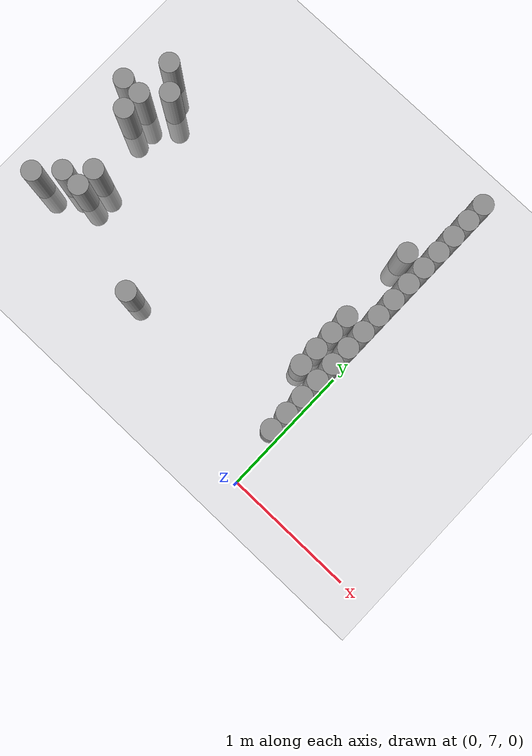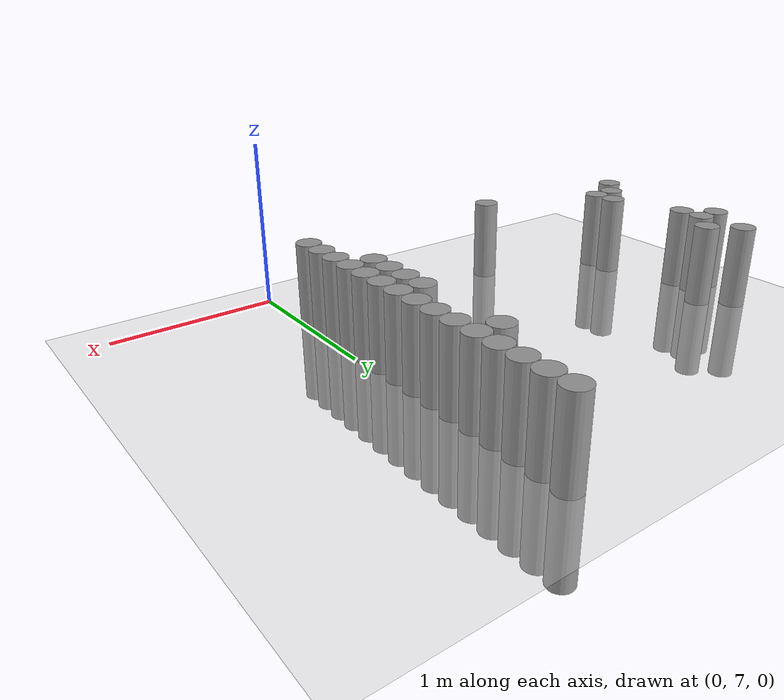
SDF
<sdf version="1.6">
 <world name="default">
  <model name="ground_plane">
   <static>1</static>
   <static>1</static>
   <link name="link">
    <collision name="collision">
     <geometry><plane><normal>0 0 1</normal><size>100 100</size></plane></geometry>
     <surface><friction><ode><mu>100</mu><mu2>50</mu2></ode></friction></surface>
    </collision>
    <visual name="visual">
     <cast_shadows>0</cast_shadows>
     <geometry><plane><normal>0 0 1</normal><size>100 100</size></plane></geometry>
     <material>
      <script><uri>file://media/materials/scripts/gazebo.material</uri><name>Gazebo/Grey</name></script>
     </material>
    </visual>
   </link>
  </model>
  <model name="unit_cylinder_167">
   <static>1</static>
   <pose>-2.475000 7.575000 0.000000 0.000000 0.000000 0.000000</pose>
   <link name="link">
    <inertial>
     <mass>1</mass>
     <inertia><ixx>0.145833</ixx><ixy>0</ixy><ixz>0</ixz><iyy>0.145833</iyy><iyz>0</iyz><izz>0.125</izz></inertia>
    </inertial>
    <collision name="collision">
     <geometry><cylinder><radius>0.075000</radius><length>1</length></cylinder></geometry>
    </collision>
    <visual name="visual">
     <geometry><cylinder><radius>0.075000</radius><length>1</length></cylinder></geometry>
     <material>
      <script><name>Gazebo/Grey</name><uri>file://media/materials/scripts/gazebo.material</uri></script>
     </material>
    </visual>
   </link>
  </model>
  <model name="unit_cylinder_168">
   <static>1</static>
   <pose>-2.475000 8.475000 0.000000 0.000000 0.000000 0.000000</pose>
   <link name="link">
    <inertial>
     <mass>1</mass>
     <inertia><ixx>0.145833</ixx><ixy>0</ixy><ixz>0</ixz><iyy>0.145833</iyy><iyz>0</iyz><izz>0.125</izz></inertia>
    </inertial>
    <collision name="collision">
     <geometry><cylinder><radius>0.075000</radius><length>1</length></cylinder></geometry>
    </collision>
    <visual name="visual">
     <geometry><cylinder><radius>0.075000</radius><length>1</length></cylinder></geometry>
     <material>
      <script><name>Gazebo/Grey</name><uri>file://media/materials/scripts/gazebo.material</uri></script>
     </material>
    </visual>
   </link>
  </model>
  <model name="unit_cylinder_171">
   <static>1</static>
   <pose>-2.325000 7.725000 0.000000 0.000000 0.000000 0.000000</pose>
   <link name="link">
    <inertial>
     <mass>1</mass>
     <inertia><ixx>0.145833</ixx><ixy>0</ixy><ixz>0</ixz><iyy>0.145833</iyy><iyz>0</iyz><izz>0.125</izz></inertia>
    </inertial>
    <collision name="collision">
     <geometry><cylinder><radius>0.075000</radius><length>1</length></cylinder></geometry>
    </collision>
    <visual name="visual">
     <geometry><cylinder><radius>0.075000</radius><length>1</length></cylinder></geometry>
     <material>
      <script><name>Gazebo/Grey</name><uri>file://media/materials/scripts/gazebo.material</uri></script>
     </material>
    </visual>
   </link>
  </model>
  <model name="unit_cylinder_172">
   <static>1</static>
   <pose>-2.325000 8.325000 0.000000 0.000000 0.000000 0.000000</pose>
   <link name="link">
    <inertial>
     <mass>1</mass>
     <inertia><ixx>0.145833</ixx><ixy>0</ixy><ixz>0</ixz><iyy>0.145833</iyy><iyz>0</iyz><izz>0.125</izz></inertia>
    </inertial>
    <collision name="collision">
     <geometry><cylinder><radius>0.075000</radius><length>1</length></cylinder></geometry>
    </collision>
    <visual name="visual">
     <geometry><cylinder><radius>0.075000</radius><length>1</length></cylinder></geometry>
     <material>
      <script><name>Gazebo/Grey</name><uri>file://media/materials/scripts/gazebo.material</uri></script>
     </material>
    </visual>
   </link>
  </model>
  <model name="unit_cylinder_173">
   <static>1</static>
   <pose>-2.325000 8.475000 0.000000 0.000000 0.000000 0.000000</pose>
   <link name="link">
    <inertial>
     <mass>1</mass>
     <inertia><ixx>0.145833</ixx><ixy>0</ixy><ixz>0</ixz><iyy>0.145833</iyy><iyz>0</iyz><izz>0.125</izz></inertia>
    </inertial>
    <collision name="collision">
     <geometry><cylinder><radius>0.075000</radius><length>1</length></cylinder></geometry>
    </collision>
    <visual name="visual">
     <geometry><cylinder><radius>0.075000</radius><length>1</length></cylinder></geometry>
     <material>
      <script><name>Gazebo/Grey</name><uri>file://media/materials/scripts/gazebo.material</uri></script>
     </material>
    </visual>
   </link>
  </model>
  <model name="unit_cylinder_174">
   <static>1</static>
   <pose>-2.325000 8.775000 0.000000 0.000000 0.000000 0.000000</pose>
   <link name="link">
    <inertial>
     <mass>1</mass>
     <inertia><ixx>0.145833</ixx><ixy>0</ixy><ixz>0</ixz><iyy>0.145833</iyy><iyz>0</iyz><izz>0.125</izz></inertia>
    </inertial>
    <collision name="collision">
     <geometry><cylinder><radius>0.075000</radius><length>1</length></cylinder></geometry>
    </collision>
    <visual name="visual">
     <geometry><cylinder><radius>0.075000</radius><length>1</length></cylinder></geometry>
     <material>
      <script><name>Gazebo/Grey</name><uri>file://media/materials/scripts/gazebo.material</uri></script>
     </material>
    </visual>
   </link>
  </model>
  <model name="unit_cylinder_177">
   <static>1</static>
   <pose>-2.175000 7.725000 0.000000 0.000000 0.000000 0.000000</pose>
   <link name="link">
    <inertial>
     <mass>1</mass>
     <inertia><ixx>0.145833</ixx><ixy>0</ixy><ixz>0</ixz><iyy>0.145833</iyy><iyz>0</iyz><izz>0.125</izz></inertia>
    </inertial>
    <collision name="collision">
     <geometry><cylinder><radius>0.075000</radius><length>1</length></cylinder></geometry>
    </collision>
    <visual name="visual">
     <geometry><cylinder><radius>0.075000</radius><length>1</length></cylinder></geometry>
     <material>
      <script><name>Gazebo/Grey</name><uri>file://media/materials/scripts/gazebo.material</uri></script>
     </material>
    </visual>
   </link>
  </model>
  <model name="unit_cylinder_178">
   <static>1</static>
   <pose>-2.175000 7.875000 0.000000 0.000000 0.000000 0.000000</pose>
   <link name="link">
    <inertial>
     <mass>1</mass>
     <inertia><ixx>0.145833</ixx><ixy>0</ixy><ixz>0</ixz><iyy>0.145833</iyy><iyz>0</iyz><izz>0.125</izz></inertia>
    </inertial>
    <collision name="collision">
     <geometry><cylinder><radius>0.075000</radius><length>1</length></cylinder></geometry>
    </collision>
    <visual name="visual">
     <geometry><cylinder><radius>0.075000</radius><length>1</length></cylinder></geometry>
     <material>
      <script><name>Gazebo/Grey</name><uri>file://media/materials/scripts/gazebo.material</uri></script>
     </material>
    </visual>
   </link>
  </model>
  <model name="unit_cylinder_179">
   <static>1</static>
   <pose>-2.175000 8.625000 0.000000 0.000000 0.000000 0.000000</pose>
   <link name="link">
    <inertial>
     <mass>1</mass>
     <inertia><ixx>0.145833</ixx><ixy>0</ixy><ixz>0</ixz><iyy>0.145833</iyy><iyz>0</iyz><izz>0.125</izz></inertia>
    </inertial>
    <collision name="collision">
     <geometry><cylinder><radius>0.075000</radius><length>1</length></cylinder></geometry>
    </collision>
    <visual name="visual">
     <geometry><cylinder><radius>0.075000</radius><length>1</length></cylinder></geometry>
     <material>
      <script><name>Gazebo/Grey</name><uri>file://media/materials/scripts/gazebo.material</uri></script>
     </material>
    </visual>
   </link>
  </model>
  <model name="unit_cylinder_189">
   <static>1</static>
   <pose>-1.425000 7.425000 0.000000 0.000000 0.000000 0.000000</pose>
   <link name="link">
    <inertial>
     <mass>1</mass>
     <inertia><ixx>0.145833</ixx><ixy>0</ixy><ixz>0</ixz><iyy>0.145833</iyy><iyz>0</iyz><izz>0.125</izz></inertia>
    </inertial>
    <collision name="collision">
     <geometry><cylinder><radius>0.075000</radius><length>1</length></cylinder></geometry>
    </collision>
    <visual name="visual">
     <geometry><cylinder><radius>0.075000</radius><length>1</length></cylinder></geometry>
     <material>
      <script><name>Gazebo/Grey</name><uri>file://media/materials/scripts/gazebo.material</uri></script>
     </material>
    </visual>
   </link>
  </model>
  <model name="unit_cylinder_200">
   <static>1</static>
   <pose>-0.225000 7.875000 0.000000 0.000000 0.000000 0.000000</pose>
   <link name="link">
    <inertial>
     <mass>1</mass>
     <inertia><ixx>0.145833</ixx><ixy>0</ixy><ixz>0</ixz><iyy>0.145833</iyy><iyz>0</iyz><izz>0.125</izz></inertia>
    </inertial>
    <collision name="collision">
     <geometry><cylinder><radius>0.075000</radius><length>1</length></cylinder></geometry>
    </collision>
    <visual name="visual">
     <geometry><cylinder><radius>0.075000</radius><length>1</length></cylinder></geometry>
     <material>
      <script><name>Gazebo/Grey</name><uri>file://media/materials/scripts/gazebo.material</uri></script>
     </material>
    </visual>
   </link>
  </model>
  <model name="unit_cylinder_201">
   <static>1</static>
   <pose>-0.225000 8.025000 0.000000 0.000000 0.000000 0.000000</pose>
   <link name="link">
    <inertial>
     <mass>1</mass>
     <inertia><ixx>0.145833</ixx><ixy>0</ixy><ixz>0</ixz><iyy>0.145833</iyy><iyz>0</iyz><izz>0.125</izz></inertia>
    </inertial>
    <collision name="collision">
     <geometry><cylinder><radius>0.075000</radius><length>1</length></cylinder></geometry>
    </collision>
    <visual name="visual">
     <geometry><cylinder><radius>0.075000</radius><length>1</length></cylinder></geometry>
     <material>
      <script><name>Gazebo/Grey</name><uri>file://media/materials/scripts/gazebo.material</uri></script>
     </material>
    </visual>
   </link>
  </model>
  <model name="unit_cylinder_202">
   <static>1</static>
   <pose>-0.225000 8.175000 0.000000 0.000000 0.000000 0.000000</pose>
   <link name="link">
    <inertial>
     <mass>1</mass>
     <inertia><ixx>0.145833</ixx><ixy>0</ixy><ixz>0</ixz><iyy>0.145833</iyy><iyz>0</iyz><izz>0.125</izz></inertia>
    </inertial>
    <collision name="collision">
     <geometry><cylinder><radius>0.075000</radius><length>1</length></cylinder></geometry>
    </collision>
    <visual name="visual">
     <geometry><cylinder><radius>0.075000</radius><length>1</length></cylinder></geometry>
     <material>
      <script><name>Gazebo/Grey</name><uri>file://media/materials/scripts/gazebo.material</uri></script>
     </material>
    </visual>
   </link>
  </model>
  <model name="unit_cylinder_203">
   <static>1</static>
   <pose>-0.225000 8.325000 0.000000 0.000000 0.000000 0.000000</pose>
   <link name="link">
    <inertial>
     <mass>1</mass>
     <inertia><ixx>0.145833</ixx><ixy>0</ixy><ixz>0</ixz><iyy>0.145833</iyy><iyz>0</iyz><izz>0.125</izz></inertia>
    </inertial>
    <collision name="collision">
     <geometry><cylinder><radius>0.075000</radius><length>1</length></cylinder></geometry>
    </collision>
    <visual name="visual">
     <geometry><cylinder><radius>0.075000</radius><length>1</length></cylinder></geometry>
     <material>
      <script><name>Gazebo/Grey</name><uri>file://media/materials/scripts/gazebo.material</uri></script>
     </material>
    </visual>
   </link>
  </model>
  <model name="unit_cylinder_204">
   <static>1</static>
   <pose>-0.225000 8.925000 0.000000 0.000000 0.000000 0.000000</pose>
   <link name="link">
    <inertial>
     <mass>1</mass>
     <inertia><ixx>0.145833</ixx><ixy>0</ixy><ixz>0</ixz><iyy>0.145833</iyy><iyz>0</iyz><izz>0.125</izz></inertia>
    </inertial>
    <collision name="collision">
     <geometry><cylinder><radius>0.075000</radius><length>1</length></cylinder></geometry>
    </collision>
    <visual name="visual">
     <geometry><cylinder><radius>0.075000</radius><length>1</length></cylinder></geometry>
     <material>
      <script><name>Gazebo/Grey</name><uri>file://media/materials/scripts/gazebo.material</uri></script>
     </material>
    </visual>
   </link>
  </model>
  <model name="unit_cylinder_220">
   <static>1</static>
   <pose>-0.075000 7.425000 0.000000 0.000000 0.000000 0.000000</pose>
   <link name="link">
    <inertial>
     <mass>1</mass>
     <inertia><ixx>0.145833</ixx><ixy>0</ixy><ixz>0</ixz><iyy>0.145833</iyy><iyz>0</iyz><izz>0.125</izz></inertia>
    </inertial>
    <collision name="collision">
     <geometry><cylinder><radius>0.075000</radius><length>1</length></cylinder></geometry>
    </collision>
    <visual name="visual">
     <geometry><cylinder><radius>0.075000</radius><length>1</length></cylinder></geometry>
     <material>
      <script><name>Gazebo/Grey</name><uri>file://media/materials/scripts/gazebo.material</uri></script>
     </material>
    </visual>
   </link>
  </model>
  <model name="unit_cylinder_221">
   <static>1</static>
   <pose>-0.075000 7.575000 0.000000 0.000000 0.000000 0.000000</pose>
   <link name="link">
    <inertial>
     <mass>1</mass>
     <inertia><ixx>0.145833</ixx><ixy>0</ixy><ixz>0</ixz><iyy>0.145833</iyy><iyz>0</iyz><izz>0.125</izz></inertia>
    </inertial>
    <collision name="collision">
     <geometry><cylinder><radius>0.075000</radius><length>1</length></cylinder></geometry>
    </collision>
    <visual name="visual">
     <geometry><cylinder><radius>0.075000</radius><length>1</length></cylinder></geometry>
     <material>
      <script><name>Gazebo/Grey</name><uri>file://media/materials/scripts/gazebo.material</uri></script>
     </material>
    </visual>
   </link>
  </model>
  <model name="unit_cylinder_222">
   <static>1</static>
   <pose>-0.075000 7.725000 0.000000 0.000000 0.000000 0.000000</pose>
   <link name="link">
    <inertial>
     <mass>1</mass>
     <inertia><ixx>0.145833</ixx><ixy>0</ixy><ixz>0</ixz><iyy>0.145833</iyy><iyz>0</iyz><izz>0.125</izz></inertia>
    </inertial>
    <collision name="collision">
     <geometry><cylinder><radius>0.075000</radius><length>1</length></cylinder></geometry>
    </collision>
    <visual name="visual">
     <geometry><cylinder><radius>0.075000</radius><length>1</length></cylinder></geometry>
     <material>
      <script><name>Gazebo/Grey</name><uri>file://media/materials/scripts/gazebo.material</uri></script>
     </material>
    </visual>
   </link>
  </model>
  <model name="unit_cylinder_223">
   <static>1</static>
   <pose>-0.075000 7.875000 0.000000 0.000000 0.000000 0.000000</pose>
   <link name="link">
    <inertial>
     <mass>1</mass>
     <inertia><ixx>0.145833</ixx><ixy>0</ixy><ixz>0</ixz><iyy>0.145833</iyy><iyz>0</iyz><izz>0.125</izz></inertia>
    </inertial>
    <collision name="collision">
     <geometry><cylinder><radius>0.075000</radius><length>1</length></cylinder></geometry>
    </collision>
    <visual name="visual">
     <geometry><cylinder><radius>0.075000</radius><length>1</length></cylinder></geometry>
     <material>
      <script><name>Gazebo/Grey</name><uri>file://media/materials/scripts/gazebo.material</uri></script>
     </material>
    </visual>
   </link>
  </model>
  <model name="unit_cylinder_224">
   <static>1</static>
   <pose>-0.075000 8.025000 0.000000 0.000000 0.000000 0.000000</pose>
   <link name="link">
    <inertial>
     <mass>1</mass>
     <inertia><ixx>0.145833</ixx><ixy>0</ixy><ixz>0</ixz><iyy>0.145833</iyy><iyz>0</iyz><izz>0.125</izz></inertia>
    </inertial>
    <collision name="collision">
     <geometry><cylinder><radius>0.075000</radius><length>1</length></cylinder></geometry>
    </collision>
    <visual name="visual">
     <geometry><cylinder><radius>0.075000</radius><length>1</length></cylinder></geometry>
     <material>
      <script><name>Gazebo/Grey</name><uri>file://media/materials/scripts/gazebo.material</uri></script>
     </material>
    </visual>
   </link>
  </model>
  <model name="unit_cylinder_225">
   <static>1</static>
   <pose>-0.075000 8.175000 0.000000 0.000000 0.000000 0.000000</pose>
   <link name="link">
    <inertial>
     <mass>1</mass>
     <inertia><ixx>0.145833</ixx><ixy>0</ixy><ixz>0</ixz><iyy>0.145833</iyy><iyz>0</iyz><izz>0.125</izz></inertia>
    </inertial>
    <collision name="collision">
     <geometry><cylinder><radius>0.075000</radius><length>1</length></cylinder></geometry>
    </collision>
    <visual name="visual">
     <geometry><cylinder><radius>0.075000</radius><length>1</length></cylinder></geometry>
     <material>
      <script><name>Gazebo/Grey</name><uri>file://media/materials/scripts/gazebo.material</uri></script>
     </material>
    </visual>
   </link>
  </model>
  <model name="unit_cylinder_226">
   <static>1</static>
   <pose>-0.075000 8.325000 0.000000 0.000000 0.000000 0.000000</pose>
   <link name="link">
    <inertial>
     <mass>1</mass>
     <inertia><ixx>0.145833</ixx><ixy>0</ixy><ixz>0</ixz><iyy>0.145833</iyy><iyz>0</iyz><izz>0.125</izz></inertia>
    </inertial>
    <collision name="collision">
     <geometry><cylinder><radius>0.075000</radius><length>1</length></cylinder></geometry>
    </collision>
    <visual name="visual">
     <geometry><cylinder><radius>0.075000</radius><length>1</length></cylinder></geometry>
     <material>
      <script><name>Gazebo/Grey</name><uri>file://media/materials/scripts/gazebo.material</uri></script>
     </material>
    </visual>
   </link>
  </model>
  <model name="unit_cylinder_227">
   <static>1</static>
   <pose>-0.075000 8.475000 0.000000 0.000000 0.000000 0.000000</pose>
   <link name="link">
    <inertial>
     <mass>1</mass>
     <inertia><ixx>0.145833</ixx><ixy>0</ixy><ixz>0</ixz><iyy>0.145833</iyy><iyz>0</iyz><izz>0.125</izz></inertia>
    </inertial>
    <collision name="collision">
     <geometry><cylinder><radius>0.075000</radius><length>1</length></cylinder></geometry>
    </collision>
    <visual name="visual">
     <geometry><cylinder><radius>0.075000</radius><length>1</length></cylinder></geometry>
     <material>
      <script><name>Gazebo/Grey</name><uri>file://media/materials/scripts/gazebo.material</uri></script>
     </material>
    </visual>
   </link>
  </model>
  <model name="unit_cylinder_228">
   <static>1</static>
   <pose>-0.075000 8.625000 0.000000 0.000000 0.000000 0.000000</pose>
   <link name="link">
    <inertial>
     <mass>1</mass>
     <inertia><ixx>0.145833</ixx><ixy>0</ixy><ixz>0</ixz><iyy>0.145833</iyy><iyz>0</iyz><izz>0.125</izz></inertia>
    </inertial>
    <collision name="collision">
     <geometry><cylinder><radius>0.075000</radius><length>1</length></cylinder></geometry>
    </collision>
    <visual name="visual">
     <geometry><cylinder><radius>0.075000</radius><length>1</length></cylinder></geometry>
     <material>
      <script><name>Gazebo/Grey</name><uri>file://media/materials/scripts/gazebo.material</uri></script>
     </material>
    </visual>
   </link>
  </model>
  <model name="unit_cylinder_229">
   <static>1</static>
   <pose>-0.075000 8.775000 0.000000 0.000000 0.000000 0.000000</pose>
   <link name="link">
    <inertial>
     <mass>1</mass>
     <inertia><ixx>0.145833</ixx><ixy>0</ixy><ixz>0</ixz><iyy>0.145833</iyy><iyz>0</iyz><izz>0.125</izz></inertia>
    </inertial>
    <collision name="collision">
     <geometry><cylinder><radius>0.075000</radius><length>1</length></cylinder></geometry>
    </collision>
    <visual name="visual">
     <geometry><cylinder><radius>0.075000</radius><length>1</length></cylinder></geometry>
     <material>
      <script><name>Gazebo/Grey</name><uri>file://media/materials/scripts/gazebo.material</uri></script>
     </material>
    </visual>
   </link>
  </model>
  <model name="unit_cylinder_230">
   <static>1</static>
   <pose>-0.075000 8.925000 0.000000 0.000000 0.000000 0.000000</pose>
   <link name="link">
    <inertial>
     <mass>1</mass>
     <inertia><ixx>0.145833</ixx><ixy>0</ixy><ixz>0</ixz><iyy>0.145833</iyy><iyz>0</iyz><izz>0.125</izz></inertia>
    </inertial>
    <collision name="collision">
     <geometry><cylinder><radius>0.075000</radius><length>1</length></cylinder></geometry>
    </collision>
    <visual name="visual">
     <geometry><cylinder><radius>0.075000</radius><length>1</length></cylinder></geometry>
     <material>
      <script><name>Gazebo/Grey</name><uri>file://media/materials/scripts/gazebo.material</uri></script>
     </material>
    </visual>
   </link>
  </model>
  <model name="unit_cylinder_231">
   <static>1</static>
   <pose>-0.075000 9.075000 0.000000 0.000000 0.000000 0.000000</pose>
   <link name="link">
    <inertial>
     <mass>1</mass>
     <inertia><ixx>0.145833</ixx><ixy>0</ixy><ixz>0</ixz><iyy>0.145833</iyy><iyz>0</iyz><izz>0.125</izz></inertia>
    </inertial>
    <collision name="collision">
     <geometry><cylinder><radius>0.075000</radius><length>1</length></cylinder></geometry>
    </collision>
    <visual name="visual">
     <geometry><cylinder><radius>0.075000</radius><length>1</length></cylinder></geometry>
     <material>
      <script><name>Gazebo/Grey</name><uri>file://media/materials/scripts/gazebo.material</uri></script>
     </material>
    </visual>
   </link>
  </model>
  <model name="unit_cylinder_232">
   <static>1</static>
   <pose>-0.075000 9.225000 0.000000 0.000000 0.000000 0.000000</pose>
   <link name="link">
    <inertial>
     <mass>1</mass>
     <inertia><ixx>0.145833</ixx><ixy>0</ixy><ixz>0</ixz><iyy>0.145833</iyy><iyz>0</iyz><izz>0.125</izz></inertia>
    </inertial>
    <collision name="collision">
     <geometry><cylinder><radius>0.075000</radius><length>1</length></cylinder></geometry>
    </collision>
    <visual name="visual">
     <geometry><cylinder><radius>0.075000</radius><length>1</length></cylinder></geometry>
     <material>
      <script><name>Gazebo/Grey</name><uri>file://media/materials/scripts/gazebo.material</uri></script>
     </material>
    </visual>
   </link>
  </model>
  <model name="unit_cylinder_233">
   <static>1</static>
   <pose>-0.075000 9.375000 0.000000 0.000000 0.000000 0.000000</pose>
   <link name="link">
    <inertial>
     <mass>1</mass>
     <inertia><ixx>0.145833</ixx><ixy>0</ixy><ixz>0</ixz><iyy>0.145833</iyy><iyz>0</iyz><izz>0.125</izz></inertia>
    </inertial>
    <collision name="collision">
     <geometry><cylinder><radius>0.075000</radius><length>1</length></cylinder></geometry>
    </collision>
    <visual name="visual">
     <geometry><cylinder><radius>0.075000</radius><length>1</length></cylinder></geometry>
     <material>
      <script><name>Gazebo/Grey</name><uri>file://media/materials/scripts/gazebo.material</uri></script>
     </material>
    </visual>
   </link>
  </model>
  <model name="unit_cylinder_234">
   <static>1</static>
   <pose>-0.075000 9.525000 0.000000 0.000000 0.000000 0.000000</pose>
   <link name="link">
    <inertial>
     <mass>1</mass>
     <inertia><ixx>0.145833</ixx><ixy>0</ixy><ixz>0</ixz><iyy>0.145833</iyy><iyz>0</iyz><izz>0.125</izz></inertia>
    </inertial>
    <collision name="collision">
     <geometry><cylinder><radius>0.075000</radius><length>1</length></cylinder></geometry>
    </collision>
    <visual name="visual">
     <geometry><cylinder><radius>0.075000</radius><length>1</length></cylinder></geometry>
     <material>
      <script><name>Gazebo/Grey</name><uri>file://media/materials/scripts/gazebo.material</uri></script>
     </material>
    </visual>
   </link>
  </model>
 </world>
</sdf>
